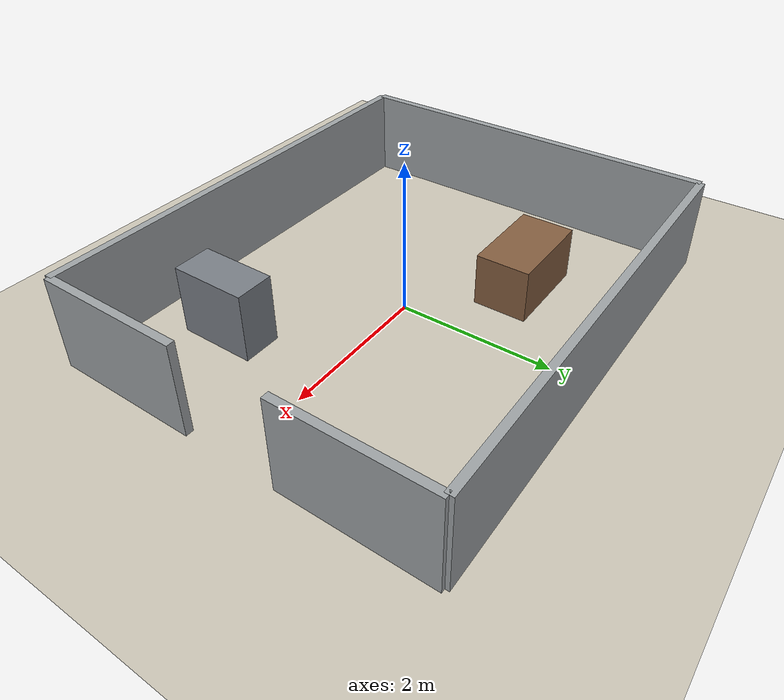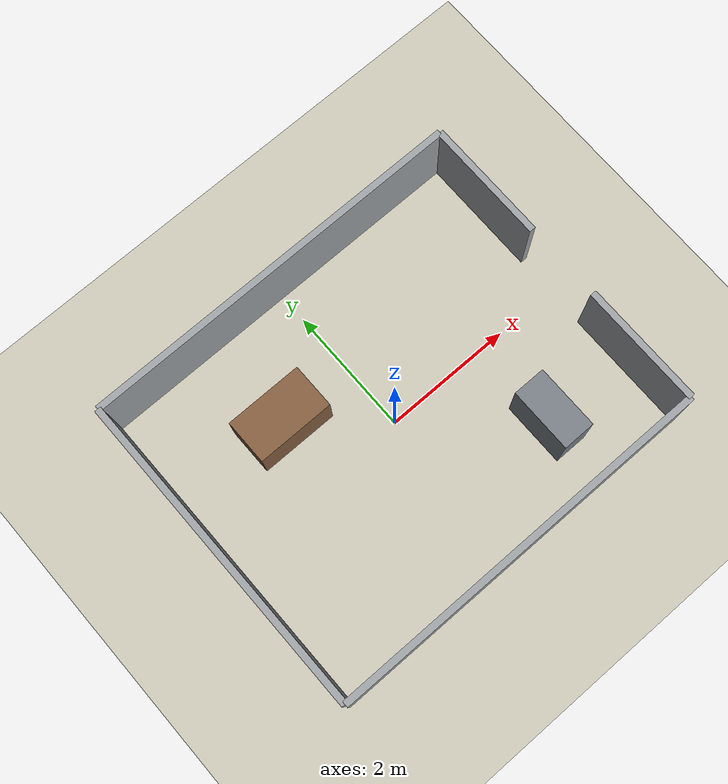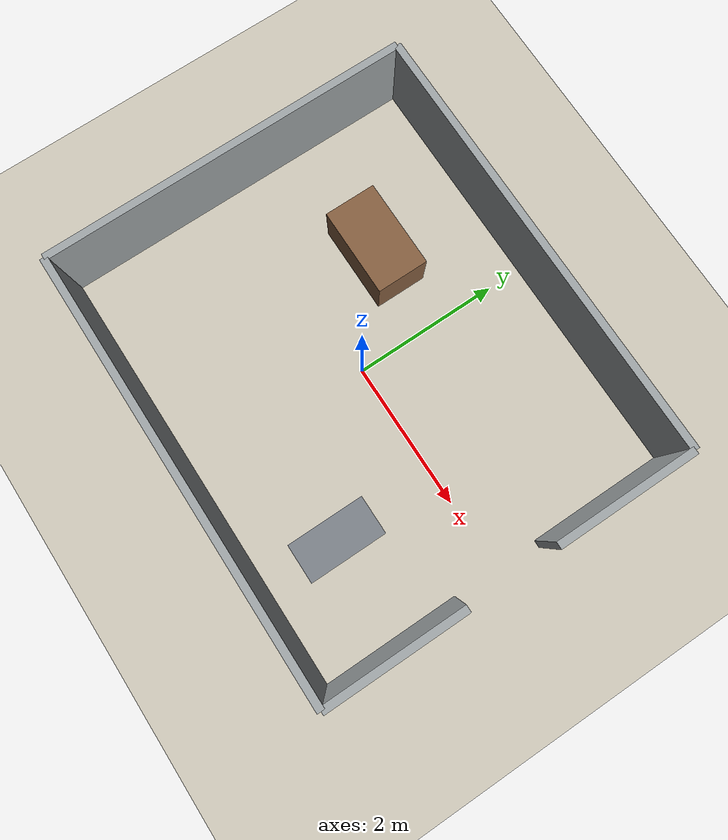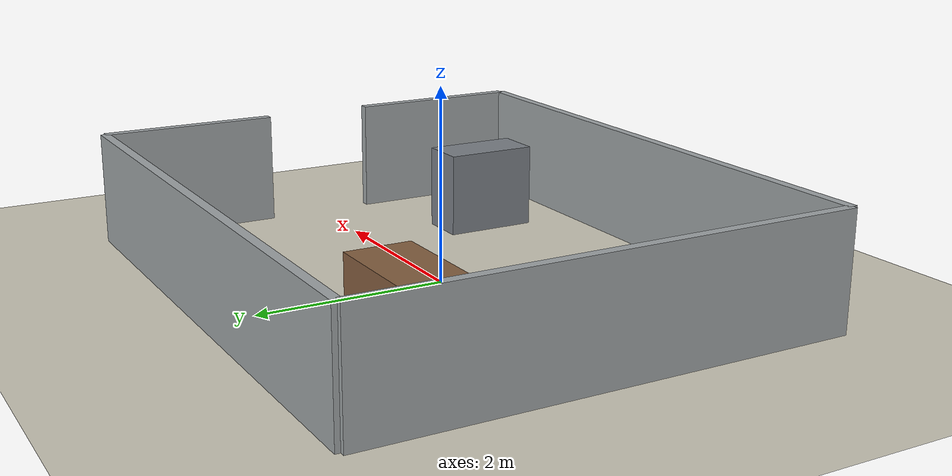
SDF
<?xml version="1.0"?>
<sdf version="1.9">
  <world name="test_room">

    <physics name="1ms" type="ignored">
      <max_step_size>0.001</max_step_size>
      <real_time_factor>1.0</real_time_factor>
    </physics>

    <plugin filename="gz-sim-physics-system" name="gz::sim::systems::Physics"/>
    <plugin filename="gz-sim-user-commands-system" name="gz::sim::systems::UserCommands"/>
    <plugin filename="gz-sim-scene-broadcaster-system" name="gz::sim::systems::SceneBroadcaster"/>
    <plugin filename="gz-sim-sensors-system" name="gz::sim::systems::Sensors">
      <render_engine>ogre2</render_engine>
    </plugin>
    <plugin filename="gz-sim-imu-system" name="gz::sim::systems::Imu"/>

    <gravity>0 0 -9.8</gravity>

    <scene>
      <ambient>0.85 0.85 0.85 1</ambient>
      <background>0.75 0.80 0.83 1</background>
      <shadows>true</shadows>
    </scene>

    <light type="directional" name="sun">
      <cast_shadows>true</cast_shadows>
      <pose>0 0 10 0 0 0</pose>
      <diffuse>0.9 0.9 0.9 1</diffuse>
      <specular>0.2 0.2 0.2 1</specular>
      <direction>-0.5 0.2 -0.9</direction>
    </light>

    <model name="ground_plane">
      <static>true</static>
      <link name="link">
        <collision name="collision">
          <geometry><plane><normal>0 0 1</normal><size>40 40</size></plane></geometry>
        </collision>
        <visual name="visual">
          <geometry><plane><normal>0 0 1</normal><size>40 40</size></plane></geometry>
          <material>
            <ambient>0.75 0.73 0.68 1</ambient>
            <diffuse>0.80 0.78 0.72 1</diffuse>
          </material>
        </visual>
      </link>
    </model>

    <!-- Room shell. Walls are 0.1 m thick and 1.2 m tall: above the lidar
         plane at 0.22 m, which is all the 2D safety layer can see. -->
    <model name="walls">
      <static>true</static>
      <link name="link">

        <collision name="north"><pose>0 2.5 0.6 0 0 0</pose>
          <geometry><box><size>6.0 0.1 1.2</size></box></geometry></collision>
        <visual name="north_visual"><pose>0 2.5 0.6 0 0 0</pose>
          <geometry><box><size>6.0 0.1 1.2</size></box></geometry>
          <material><ambient>0.55 0.57 0.58 1</ambient><diffuse>0.62 0.64 0.65 1</diffuse></material></visual>

        <collision name="south"><pose>0 -2.5 0.6 0 0 0</pose>
          <geometry><box><size>6.0 0.1 1.2</size></box></geometry></collision>
        <visual name="south_visual"><pose>0 -2.5 0.6 0 0 0</pose>
          <geometry><box><size>6.0 0.1 1.2</size></box></geometry>
          <material><ambient>0.55 0.57 0.58 1</ambient><diffuse>0.62 0.64 0.65 1</diffuse></material></visual>

        <collision name="west"><pose>-3.0 0 0.6 0 0 0</pose>
          <geometry><box><size>0.1 5.0 1.2</size></box></geometry></collision>
        <visual name="west_visual"><pose>-3.0 0 0.6 0 0 0</pose>
          <geometry><box><size>0.1 5.0 1.2</size></box></geometry>
          <material><ambient>0.55 0.57 0.58 1</ambient><diffuse>0.62 0.64 0.65 1</diffuse></material></visual>

        <!-- East wall split to leave a 0.9 m doorway centred at y = 0. -->
        <collision name="east_lower"><pose>3.0 -1.55 0.6 0 0 0</pose>
          <geometry><box><size>0.1 1.9 1.2</size></box></geometry></collision>
        <visual name="east_lower_visual"><pose>3.0 -1.55 0.6 0 0 0</pose>
          <geometry><box><size>0.1 1.9 1.2</size></box></geometry>
          <material><ambient>0.55 0.57 0.58 1</ambient><diffuse>0.62 0.64 0.65 1</diffuse></material></visual>

        <collision name="east_upper"><pose>3.0 1.55 0.6 0 0 0</pose>
          <geometry><box><size>0.1 1.9 1.2</size></box></geometry></collision>
        <visual name="east_upper_visual"><pose>3.0 1.55 0.6 0 0 0</pose>
          <geometry><box><size>0.1 1.9 1.2</size></box></geometry>
          <material><ambient>0.55 0.57 0.58 1</ambient><diffuse>0.62 0.64 0.65 1</diffuse></material></visual>

      </link>
    </model>

    <!-- Furniture-sized obstacles for obstacle-avoidance and stop tests. -->
    <model name="table">
      <static>true</static>
      <pose>-1.2 1.0 0.0 0 0 0</pose>
      <link name="link">
        <collision name="collision"><pose>0 0 0.35 0 0 0</pose>
          <geometry><box><size>1.2 0.7 0.7</size></box></geometry></collision>
        <visual name="visual"><pose>0 0 0.35 0 0 0</pose>
          <geometry><box><size>1.2 0.7 0.7</size></box></geometry>
          <material><ambient>0.45 0.32 0.22 1</ambient><diffuse>0.52 0.37 0.25 1</diffuse></material></visual>
      </link>
    </model>

    <model name="cabinet">
      <static>true</static>
      <pose>1.6 -1.4 0.0 0 0 0</pose>
      <link name="link">
        <collision name="collision"><pose>0 0 0.45 0 0 0</pose>
          <geometry><box><size>0.5 1.0 0.9</size></box></geometry></collision>
        <visual name="visual"><pose>0 0 0.45 0 0 0</pose>
          <geometry><box><size>0.5 1.0 0.9</size></box></geometry>
          <material><ambient>0.40 0.42 0.45 1</ambient><diffuse>0.48 0.50 0.53 1</diffuse></material></visual>
      </link>
    </model>

  </world>
</sdf>
